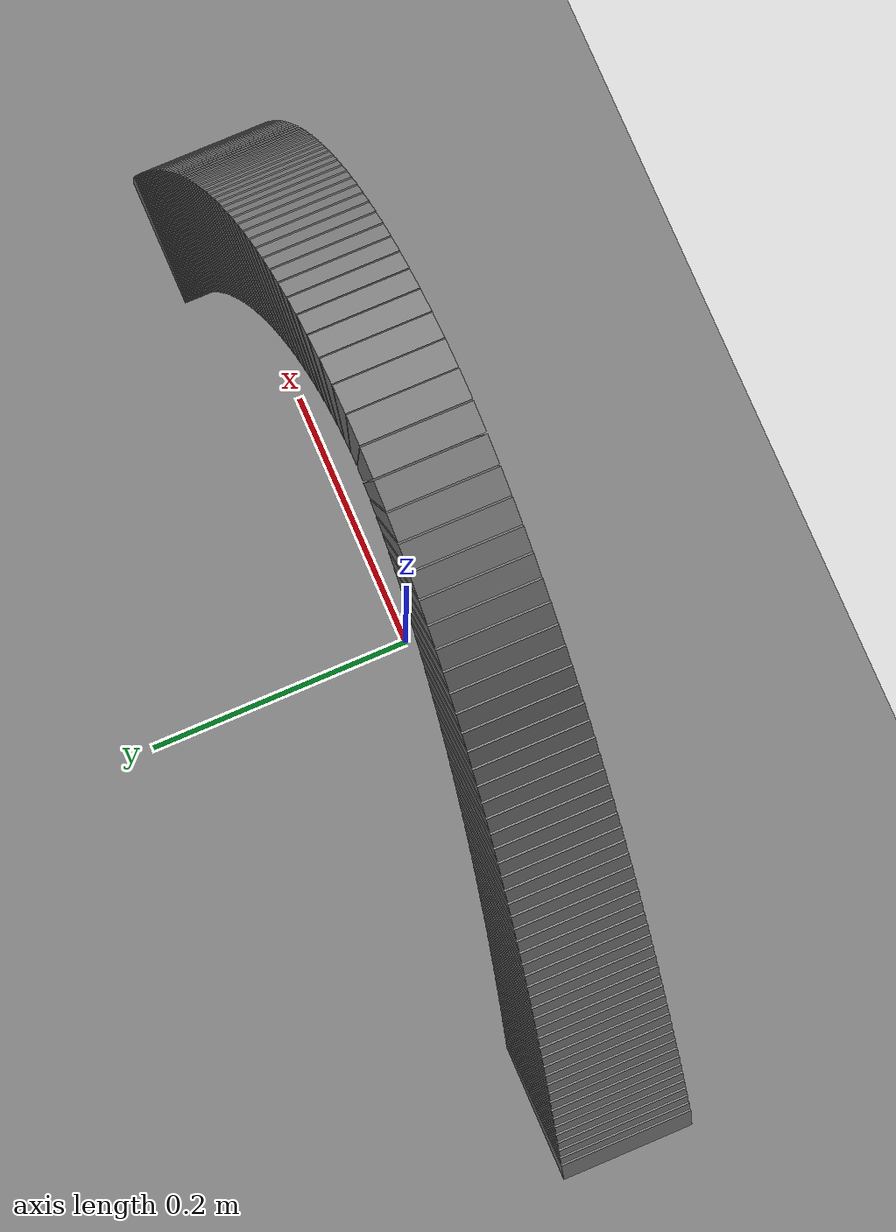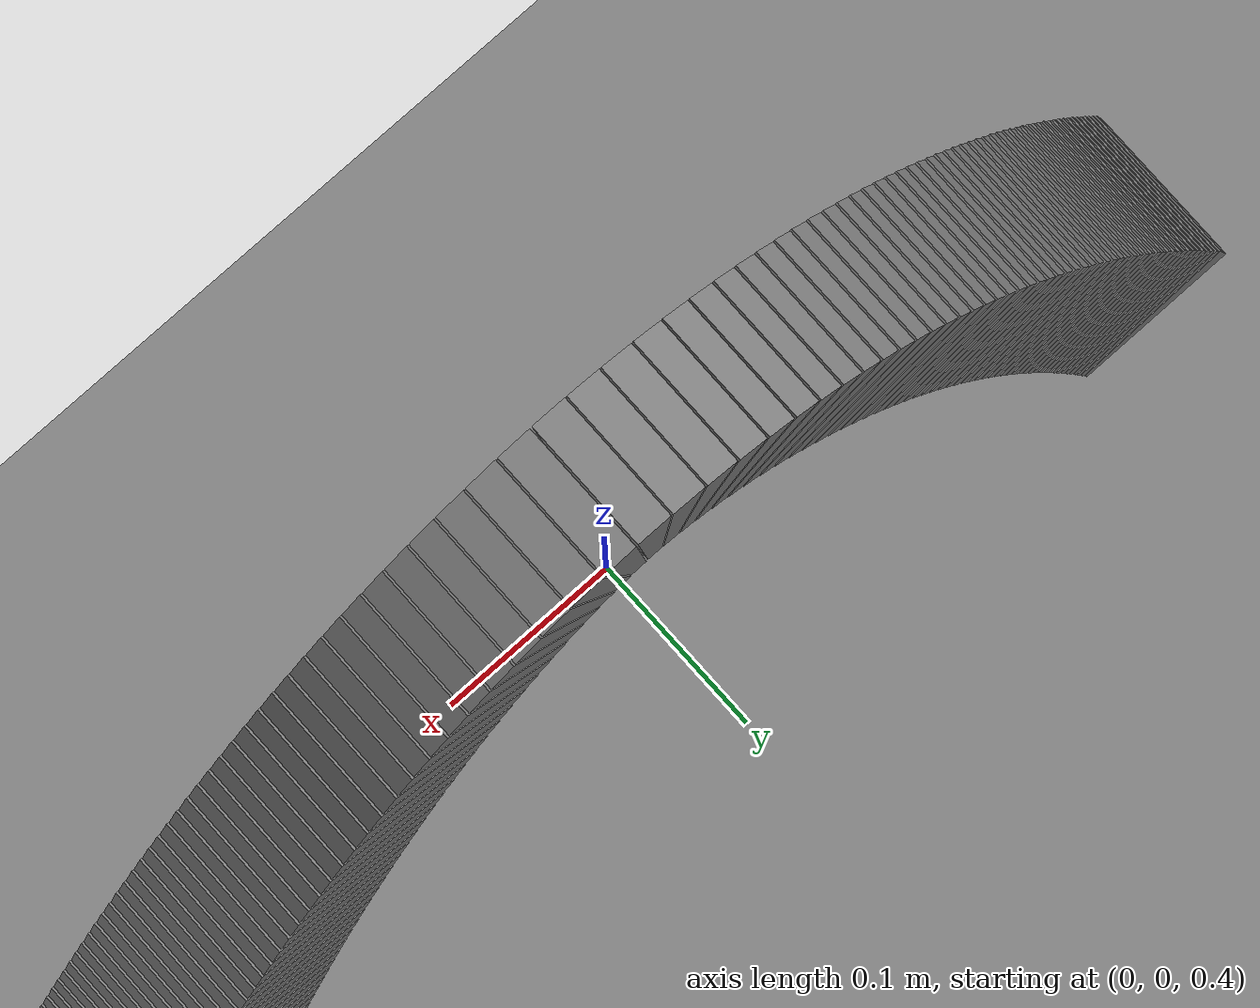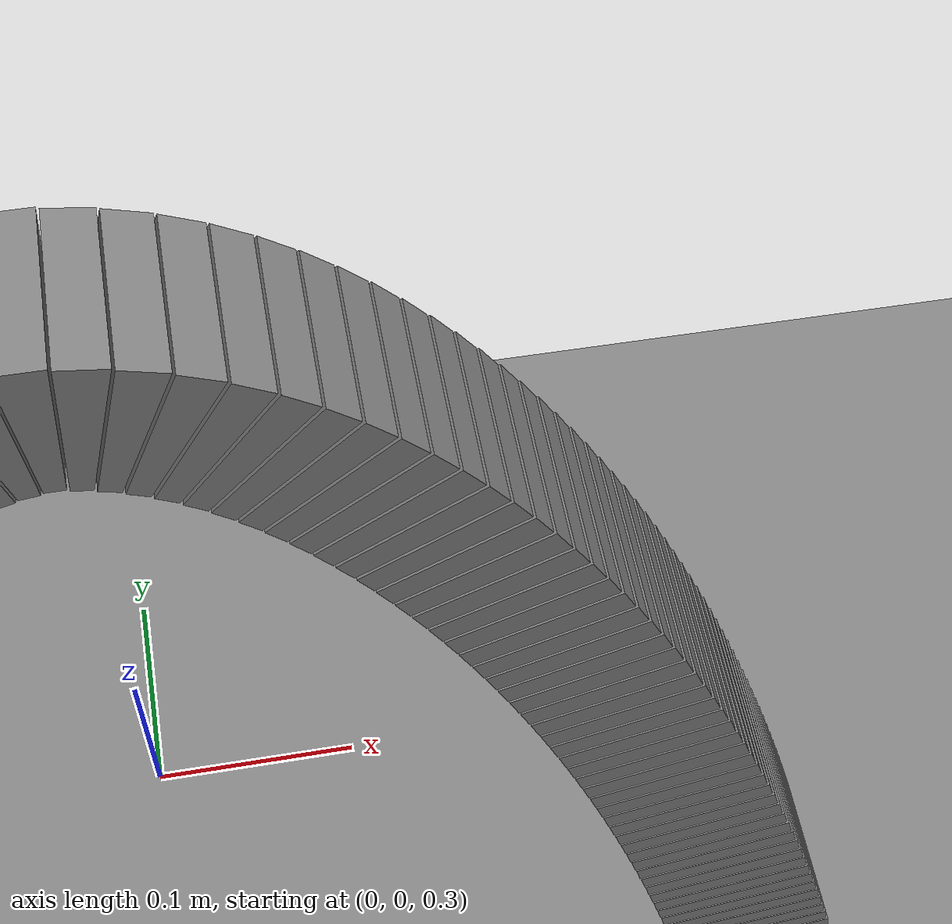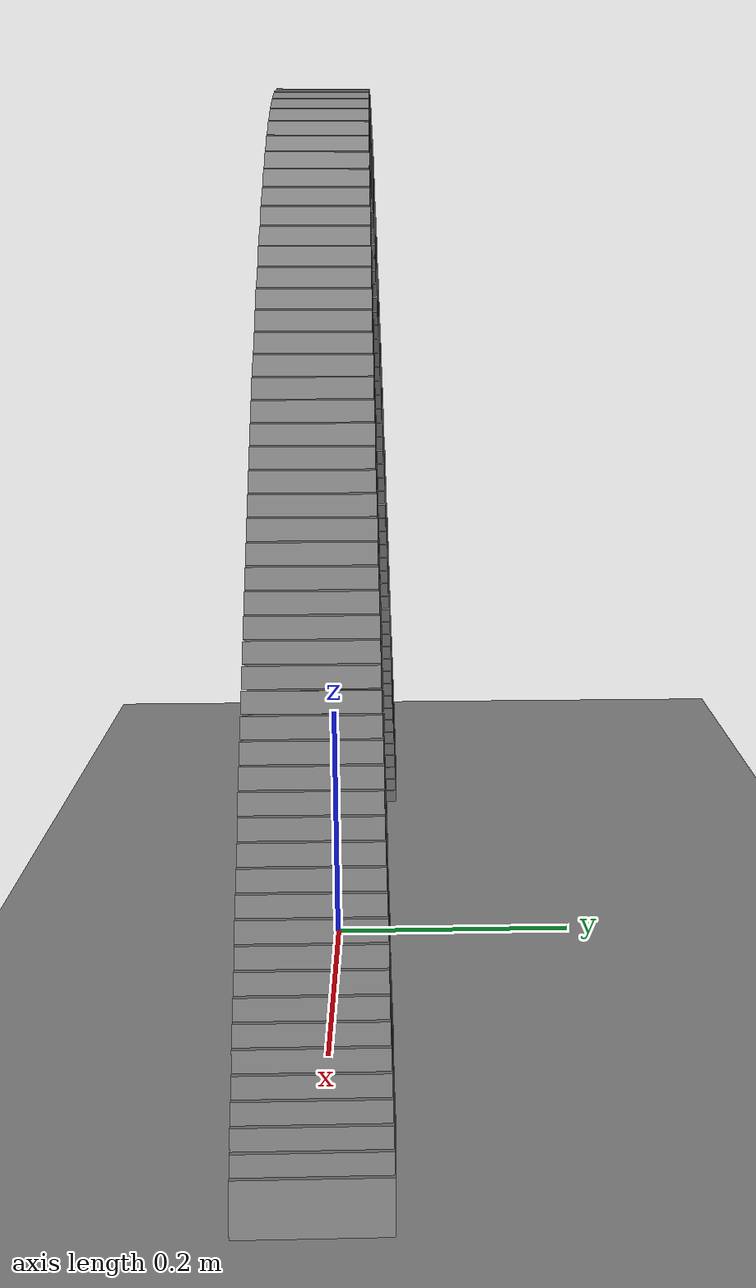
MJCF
<mujoco>
    <option timestep="0.005" gravity="0 0 -9.8" cone="elliptic"/>
    <asset>
        <mesh file="arch/num_stones=101/stone-01.obj" name="arch/num_stones=101/stone-01" scale="0.01000000 0.01000000 0.01000000"/>
        <mesh file="arch/num_stones=101/stone-02.obj" name="arch/num_stones=101/stone-02" scale="0.01000000 0.01000000 0.01000000"/>
        <mesh file="arch/num_stones=101/stone-03.obj" name="arch/num_stones=101/stone-03" scale="0.01000000 0.01000000 0.01000000"/>
        <mesh file="arch/num_stones=101/stone-04.obj" name="arch/num_stones=101/stone-04" scale="0.01000000 0.01000000 0.01000000"/>
        <mesh file="arch/num_stones=101/stone-05.obj" name="arch/num_stones=101/stone-05" scale="0.01000000 0.01000000 0.01000000"/>
        <mesh file="arch/num_stones=101/stone-06.obj" name="arch/num_stones=101/stone-06" scale="0.01000000 0.01000000 0.01000000"/>
        <mesh file="arch/num_stones=101/stone-07.obj" name="arch/num_stones=101/stone-07" scale="0.01000000 0.01000000 0.01000000"/>
        <mesh file="arch/num_stones=101/stone-08.obj" name="arch/num_stones=101/stone-08" scale="0.01000000 0.01000000 0.01000000"/>
        <mesh file="arch/num_stones=101/stone-09.obj" name="arch/num_stones=101/stone-09" scale="0.01000000 0.01000000 0.01000000"/>
        <mesh file="arch/num_stones=101/stone-10.obj" name="arch/num_stones=101/stone-10" scale="0.01000000 0.01000000 0.01000000"/>
        <mesh file="arch/num_stones=101/stone-11.obj" name="arch/num_stones=101/stone-11" scale="0.01000000 0.01000000 0.01000000"/>
        <mesh file="arch/num_stones=101/stone-12.obj" name="arch/num_stones=101/stone-12" scale="0.01000000 0.01000000 0.01000000"/>
        <mesh file="arch/num_stones=101/stone-13.obj" name="arch/num_stones=101/stone-13" scale="0.01000000 0.01000000 0.01000000"/>
        <mesh file="arch/num_stones=101/stone-14.obj" name="arch/num_stones=101/stone-14" scale="0.01000000 0.01000000 0.01000000"/>
        <mesh file="arch/num_stones=101/stone-15.obj" name="arch/num_stones=101/stone-15" scale="0.01000000 0.01000000 0.01000000"/>
        <mesh file="arch/num_stones=101/stone-16.obj" name="arch/num_stones=101/stone-16" scale="0.01000000 0.01000000 0.01000000"/>
        <mesh file="arch/num_stones=101/stone-17.obj" name="arch/num_stones=101/stone-17" scale="0.01000000 0.01000000 0.01000000"/>
        <mesh file="arch/num_stones=101/stone-18.obj" name="arch/num_stones=101/stone-18" scale="0.01000000 0.01000000 0.01000000"/>
        <mesh file="arch/num_stones=101/stone-19.obj" name="arch/num_stones=101/stone-19" scale="0.01000000 0.01000000 0.01000000"/>
        <mesh file="arch/num_stones=101/stone-20.obj" name="arch/num_stones=101/stone-20" scale="0.01000000 0.01000000 0.01000000"/>
        <mesh file="arch/num_stones=101/stone-21.obj" name="arch/num_stones=101/stone-21" scale="0.01000000 0.01000000 0.01000000"/>
        <mesh file="arch/num_stones=101/stone-22.obj" name="arch/num_stones=101/stone-22" scale="0.01000000 0.01000000 0.01000000"/>
        <mesh file="arch/num_stones=101/stone-23.obj" name="arch/num_stones=101/stone-23" scale="0.01000000 0.01000000 0.01000000"/>
        <mesh file="arch/num_stones=101/stone-24.obj" name="arch/num_stones=101/stone-24" scale="0.01000000 0.01000000 0.01000000"/>
        <mesh file="arch/num_stones=101/stone-25.obj" name="arch/num_stones=101/stone-25" scale="0.01000000 0.01000000 0.01000000"/>
        <mesh file="arch/num_stones=101/stone-26.obj" name="arch/num_stones=101/stone-26" scale="0.01000000 0.01000000 0.01000000"/>
        <mesh file="arch/num_stones=101/stone-27.obj" name="arch/num_stones=101/stone-27" scale="0.01000000 0.01000000 0.01000000"/>
        <mesh file="arch/num_stones=101/stone-28.obj" name="arch/num_stones=101/stone-28" scale="0.01000000 0.01000000 0.01000000"/>
        <mesh file="arch/num_stones=101/stone-29.obj" name="arch/num_stones=101/stone-29" scale="0.01000000 0.01000000 0.01000000"/>
        <mesh file="arch/num_stones=101/stone-30.obj" name="arch/num_stones=101/stone-30" scale="0.01000000 0.01000000 0.01000000"/>
        <mesh file="arch/num_stones=101/stone-31.obj" name="arch/num_stones=101/stone-31" scale="0.01000000 0.01000000 0.01000000"/>
        <mesh file="arch/num_stones=101/stone-32.obj" name="arch/num_stones=101/stone-32" scale="0.01000000 0.01000000 0.01000000"/>
        <mesh file="arch/num_stones=101/stone-33.obj" name="arch/num_stones=101/stone-33" scale="0.01000000 0.01000000 0.01000000"/>
        <mesh file="arch/num_stones=101/stone-34.obj" name="arch/num_stones=101/stone-34" scale="0.01000000 0.01000000 0.01000000"/>
        <mesh file="arch/num_stones=101/stone-35.obj" name="arch/num_stones=101/stone-35" scale="0.01000000 0.01000000 0.01000000"/>
        <mesh file="arch/num_stones=101/stone-36.obj" name="arch/num_stones=101/stone-36" scale="0.01000000 0.01000000 0.01000000"/>
        <mesh file="arch/num_stones=101/stone-37.obj" name="arch/num_stones=101/stone-37" scale="0.01000000 0.01000000 0.01000000"/>
        <mesh file="arch/num_stones=101/stone-38.obj" name="arch/num_stones=101/stone-38" scale="0.01000000 0.01000000 0.01000000"/>
        <mesh file="arch/num_stones=101/stone-39.obj" name="arch/num_stones=101/stone-39" scale="0.01000000 0.01000000 0.01000000"/>
        <mesh file="arch/num_stones=101/stone-40.obj" name="arch/num_stones=101/stone-40" scale="0.01000000 0.01000000 0.01000000"/>
        <mesh file="arch/num_stones=101/stone-41.obj" name="arch/num_stones=101/stone-41" scale="0.01000000 0.01000000 0.01000000"/>
        <mesh file="arch/num_stones=101/stone-42.obj" name="arch/num_stones=101/stone-42" scale="0.01000000 0.01000000 0.01000000"/>
        <mesh file="arch/num_stones=101/stone-43.obj" name="arch/num_stones=101/stone-43" scale="0.01000000 0.01000000 0.01000000"/>
        <mesh file="arch/num_stones=101/stone-44.obj" name="arch/num_stones=101/stone-44" scale="0.01000000 0.01000000 0.01000000"/>
        <mesh file="arch/num_stones=101/stone-45.obj" name="arch/num_stones=101/stone-45" scale="0.01000000 0.01000000 0.01000000"/>
        <mesh file="arch/num_stones=101/stone-46.obj" name="arch/num_stones=101/stone-46" scale="0.01000000 0.01000000 0.01000000"/>
        <mesh file="arch/num_stones=101/stone-47.obj" name="arch/num_stones=101/stone-47" scale="0.01000000 0.01000000 0.01000000"/>
        <mesh file="arch/num_stones=101/stone-48.obj" name="arch/num_stones=101/stone-48" scale="0.01000000 0.01000000 0.01000000"/>
        <mesh file="arch/num_stones=101/stone-49.obj" name="arch/num_stones=101/stone-49" scale="0.01000000 0.01000000 0.01000000"/>
        <mesh file="arch/num_stones=101/stone-50.obj" name="arch/num_stones=101/stone-50" scale="0.01000000 0.01000000 0.01000000"/>
        <mesh file="arch/num_stones=101/stone-51.obj" name="arch/num_stones=101/stone-51" scale="0.01000000 0.01000000 0.01000000"/>
        <mesh file="arch/num_stones=101/stone-52.obj" name="arch/num_stones=101/stone-52" scale="0.01000000 0.01000000 0.01000000"/>
        <mesh file="arch/num_stones=101/stone-53.obj" name="arch/num_stones=101/stone-53" scale="0.01000000 0.01000000 0.01000000"/>
        <mesh file="arch/num_stones=101/stone-54.obj" name="arch/num_stones=101/stone-54" scale="0.01000000 0.01000000 0.01000000"/>
        <mesh file="arch/num_stones=101/stone-55.obj" name="arch/num_stones=101/stone-55" scale="0.01000000 0.01000000 0.01000000"/>
        <mesh file="arch/num_stones=101/stone-56.obj" name="arch/num_stones=101/stone-56" scale="0.01000000 0.01000000 0.01000000"/>
        <mesh file="arch/num_stones=101/stone-57.obj" name="arch/num_stones=101/stone-57" scale="0.01000000 0.01000000 0.01000000"/>
        <mesh file="arch/num_stones=101/stone-58.obj" name="arch/num_stones=101/stone-58" scale="0.01000000 0.01000000 0.01000000"/>
        <mesh file="arch/num_stones=101/stone-59.obj" name="arch/num_stones=101/stone-59" scale="0.01000000 0.01000000 0.01000000"/>
        <mesh file="arch/num_stones=101/stone-60.obj" name="arch/num_stones=101/stone-60" scale="0.01000000 0.01000000 0.01000000"/>
        <mesh file="arch/num_stones=101/stone-61.obj" name="arch/num_stones=101/stone-61" scale="0.01000000 0.01000000 0.01000000"/>
        <mesh file="arch/num_stones=101/stone-62.obj" name="arch/num_stones=101/stone-62" scale="0.01000000 0.01000000 0.01000000"/>
        <mesh file="arch/num_stones=101/stone-63.obj" name="arch/num_stones=101/stone-63" scale="0.01000000 0.01000000 0.01000000"/>
        <mesh file="arch/num_stones=101/stone-64.obj" name="arch/num_stones=101/stone-64" scale="0.01000000 0.01000000 0.01000000"/>
        <mesh file="arch/num_stones=101/stone-65.obj" name="arch/num_stones=101/stone-65" scale="0.01000000 0.01000000 0.01000000"/>
        <mesh file="arch/num_stones=101/stone-66.obj" name="arch/num_stones=101/stone-66" scale="0.01000000 0.01000000 0.01000000"/>
        <mesh file="arch/num_stones=101/stone-67.obj" name="arch/num_stones=101/stone-67" scale="0.01000000 0.01000000 0.01000000"/>
        <mesh file="arch/num_stones=101/stone-68.obj" name="arch/num_stones=101/stone-68" scale="0.01000000 0.01000000 0.01000000"/>
        <mesh file="arch/num_stones=101/stone-69.obj" name="arch/num_stones=101/stone-69" scale="0.01000000 0.01000000 0.01000000"/>
        <mesh file="arch/num_stones=101/stone-70.obj" name="arch/num_stones=101/stone-70" scale="0.01000000 0.01000000 0.01000000"/>
        <mesh file="arch/num_stones=101/stone-71.obj" name="arch/num_stones=101/stone-71" scale="0.01000000 0.01000000 0.01000000"/>
        <mesh file="arch/num_stones=101/stone-72.obj" name="arch/num_stones=101/stone-72" scale="0.01000000 0.01000000 0.01000000"/>
        <mesh file="arch/num_stones=101/stone-73.obj" name="arch/num_stones=101/stone-73" scale="0.01000000 0.01000000 0.01000000"/>
        <mesh file="arch/num_stones=101/stone-74.obj" name="arch/num_stones=101/stone-74" scale="0.01000000 0.01000000 0.01000000"/>
        <mesh file="arch/num_stones=101/stone-75.obj" name="arch/num_stones=101/stone-75" scale="0.01000000 0.01000000 0.01000000"/>
        <mesh file="arch/num_stones=101/stone-76.obj" name="arch/num_stones=101/stone-76" scale="0.01000000 0.01000000 0.01000000"/>
        <mesh file="arch/num_stones=101/stone-77.obj" name="arch/num_stones=101/stone-77" scale="0.01000000 0.01000000 0.01000000"/>
        <mesh file="arch/num_stones=101/stone-78.obj" name="arch/num_stones=101/stone-78" scale="0.01000000 0.01000000 0.01000000"/>
        <mesh file="arch/num_stones=101/stone-79.obj" name="arch/num_stones=101/stone-79" scale="0.01000000 0.01000000 0.01000000"/>
        <mesh file="arch/num_stones=101/stone-80.obj" name="arch/num_stones=101/stone-80" scale="0.01000000 0.01000000 0.01000000"/>
        <mesh file="arch/num_stones=101/stone-81.obj" name="arch/num_stones=101/stone-81" scale="0.01000000 0.01000000 0.01000000"/>
        <mesh file="arch/num_stones=101/stone-82.obj" name="arch/num_stones=101/stone-82" scale="0.01000000 0.01000000 0.01000000"/>
        <mesh file="arch/num_stones=101/stone-83.obj" name="arch/num_stones=101/stone-83" scale="0.01000000 0.01000000 0.01000000"/>
        <mesh file="arch/num_stones=101/stone-84.obj" name="arch/num_stones=101/stone-84" scale="0.01000000 0.01000000 0.01000000"/>
        <mesh file="arch/num_stones=101/stone-85.obj" name="arch/num_stones=101/stone-85" scale="0.01000000 0.01000000 0.01000000"/>
        <mesh file="arch/num_stones=101/stone-86.obj" name="arch/num_stones=101/stone-86" scale="0.01000000 0.01000000 0.01000000"/>
        <mesh file="arch/num_stones=101/stone-87.obj" name="arch/num_stones=101/stone-87" scale="0.01000000 0.01000000 0.01000000"/>
        <mesh file="arch/num_stones=101/stone-88.obj" name="arch/num_stones=101/stone-88" scale="0.01000000 0.01000000 0.01000000"/>
        <mesh file="arch/num_stones=101/stone-89.obj" name="arch/num_stones=101/stone-89" scale="0.01000000 0.01000000 0.01000000"/>
        <mesh file="arch/num_stones=101/stone-90.obj" name="arch/num_stones=101/stone-90" scale="0.01000000 0.01000000 0.01000000"/>
        <mesh file="arch/num_stones=101/stone-91.obj" name="arch/num_stones=101/stone-91" scale="0.01000000 0.01000000 0.01000000"/>
        <mesh file="arch/num_stones=101/stone-92.obj" name="arch/num_stones=101/stone-92" scale="0.01000000 0.01000000 0.01000000"/>
        <mesh file="arch/num_stones=101/stone-93.obj" name="arch/num_stones=101/stone-93" scale="0.01000000 0.01000000 0.01000000"/>
        <mesh file="arch/num_stones=101/stone-94.obj" name="arch/num_stones=101/stone-94" scale="0.01000000 0.01000000 0.01000000"/>
        <mesh file="arch/num_stones=101/stone-95.obj" name="arch/num_stones=101/stone-95" scale="0.01000000 0.01000000 0.01000000"/>
        <mesh file="arch/num_stones=101/stone-96.obj" name="arch/num_stones=101/stone-96" scale="0.01000000 0.01000000 0.01000000"/>
        <mesh file="arch/num_stones=101/stone-97.obj" name="arch/num_stones=101/stone-97" scale="0.01000000 0.01000000 0.01000000"/>
        <mesh file="arch/num_stones=101/stone-98.obj" name="arch/num_stones=101/stone-98" scale="0.01000000 0.01000000 0.01000000"/>
        <mesh file="arch/num_stones=101/stone-99.obj" name="arch/num_stones=101/stone-99" scale="0.01000000 0.01000000 0.01000000"/>
        <mesh file="arch/num_stones=101/stone-100.obj" name="arch/num_stones=101/stone-100" scale="0.01000000 0.01000000 0.01000000"/>
        <mesh file="arch/num_stones=101/stone-101.obj" name="arch/num_stones=101/stone-101" scale="0.01000000 0.01000000 0.01000000"/>
    </asset>
    <worldbody>
        <body name="rigid_ipc_arch_plane" pos="0 0 0">
            <geom type="plane" size="10 10 1" friction="0.500000"/>
        </body>
        <body name="rigid_ipc_arch_stone_001" pos="0 0 0" quat="0 0 0.707107 0.707107">
            <geom mesh="arch/num_stones=101/stone-01" type="mesh" friction="0.500000"/>
            <freejoint/>
        </body>
        <body name="rigid_ipc_arch_stone_002" pos="0 0 0" quat="0 0 0.707107 0.707107">
            <geom mesh="arch/num_stones=101/stone-02" type="mesh" friction="0.500000"/>
            <freejoint/>
        </body>
        <body name="rigid_ipc_arch_stone_003" pos="0 0 0" quat="0 0 0.707107 0.707107">
            <geom mesh="arch/num_stones=101/stone-03" type="mesh" friction="0.500000"/>
            <freejoint/>
        </body>
        <body name="rigid_ipc_arch_stone_004" pos="0 0 0" quat="0 0 0.707107 0.707107">
            <geom mesh="arch/num_stones=101/stone-04" type="mesh" friction="0.500000"/>
            <freejoint/>
        </body>
        <body name="rigid_ipc_arch_stone_005" pos="0 0 0" quat="0 0 0.707107 0.707107">
            <geom mesh="arch/num_stones=101/stone-05" type="mesh" friction="0.500000"/>
            <freejoint/>
        </body>
        <body name="rigid_ipc_arch_stone_006" pos="0 0 0" quat="0 0 0.707107 0.707107">
            <geom mesh="arch/num_stones=101/stone-06" type="mesh" friction="0.500000"/>
            <freejoint/>
        </body>
        <body name="rigid_ipc_arch_stone_007" pos="0 0 0" quat="0 0 0.707107 0.707107">
            <geom mesh="arch/num_stones=101/stone-07" type="mesh" friction="0.500000"/>
            <freejoint/>
        </body>
        <body name="rigid_ipc_arch_stone_008" pos="0 0 0" quat="0 0 0.707107 0.707107">
            <geom mesh="arch/num_stones=101/stone-08" type="mesh" friction="0.500000"/>
            <freejoint/>
        </body>
        <body name="rigid_ipc_arch_stone_009" pos="0 0 0" quat="0 0 0.707107 0.707107">
            <geom mesh="arch/num_stones=101/stone-09" type="mesh" friction="0.500000"/>
            <freejoint/>
        </body>
        <body name="rigid_ipc_arch_stone_010" pos="0 0 0" quat="0 0 0.707107 0.707107">
            <geom mesh="arch/num_stones=101/stone-10" type="mesh" friction="0.500000"/>
            <freejoint/>
        </body>
        <body name="rigid_ipc_arch_stone_011" pos="0 0 0" quat="0 0 0.707107 0.707107">
            <geom mesh="arch/num_stones=101/stone-11" type="mesh" friction="0.500000"/>
            <freejoint/>
        </body>
        <body name="rigid_ipc_arch_stone_012" pos="0 0 0" quat="0 0 0.707107 0.707107">
            <geom mesh="arch/num_stones=101/stone-12" type="mesh" friction="0.500000"/>
            <freejoint/>
        </body>
        <body name="rigid_ipc_arch_stone_013" pos="0 0 0" quat="0 0 0.707107 0.707107">
            <geom mesh="arch/num_stones=101/stone-13" type="mesh" friction="0.500000"/>
            <freejoint/>
        </body>
        <body name="rigid_ipc_arch_stone_014" pos="0 0 0" quat="0 0 0.707107 0.707107">
            <geom mesh="arch/num_stones=101/stone-14" type="mesh" friction="0.500000"/>
            <freejoint/>
        </body>
        <body name="rigid_ipc_arch_stone_015" pos="0 0 0" quat="0 0 0.707107 0.707107">
            <geom mesh="arch/num_stones=101/stone-15" type="mesh" friction="0.500000"/>
            <freejoint/>
        </body>
        <body name="rigid_ipc_arch_stone_016" pos="0 0 0" quat="0 0 0.707107 0.707107">
            <geom mesh="arch/num_stones=101/stone-16" type="mesh" friction="0.500000"/>
            <freejoint/>
        </body>
        <body name="rigid_ipc_arch_stone_017" pos="0 0 0" quat="0 0 0.707107 0.707107">
            <geom mesh="arch/num_stones=101/stone-17" type="mesh" friction="0.500000"/>
            <freejoint/>
        </body>
        <body name="rigid_ipc_arch_stone_018" pos="0 0 0" quat="0 0 0.707107 0.707107">
            <geom mesh="arch/num_stones=101/stone-18" type="mesh" friction="0.500000"/>
            <freejoint/>
        </body>
        <body name="rigid_ipc_arch_stone_019" pos="0 0 0" quat="0 0 0.707107 0.707107">
            <geom mesh="arch/num_stones=101/stone-19" type="mesh" friction="0.500000"/>
            <freejoint/>
        </body>
        <body name="rigid_ipc_arch_stone_020" pos="0 0 0" quat="0 0 0.707107 0.707107">
            <geom mesh="arch/num_stones=101/stone-20" type="mesh" friction="0.500000"/>
            <freejoint/>
        </body>
        <body name="rigid_ipc_arch_stone_021" pos="0 0 0" quat="0 0 0.707107 0.707107">
            <geom mesh="arch/num_stones=101/stone-21" type="mesh" friction="0.500000"/>
            <freejoint/>
        </body>
        <body name="rigid_ipc_arch_stone_022" pos="0 0 0" quat="0 0 0.707107 0.707107">
            <geom mesh="arch/num_stones=101/stone-22" type="mesh" friction="0.500000"/>
            <freejoint/>
        </body>
        <body name="rigid_ipc_arch_stone_023" pos="0 0 0" quat="0 0 0.707107 0.707107">
            <geom mesh="arch/num_stones=101/stone-23" type="mesh" friction="0.500000"/>
            <freejoint/>
        </body>
        <body name="rigid_ipc_arch_stone_024" pos="0 0 0" quat="0 0 0.707107 0.707107">
            <geom mesh="arch/num_stones=101/stone-24" type="mesh" friction="0.500000"/>
            <freejoint/>
        </body>
        <body name="rigid_ipc_arch_stone_025" pos="0 0 0" quat="0 0 0.707107 0.707107">
            <geom mesh="arch/num_stones=101/stone-25" type="mesh" friction="0.500000"/>
            <freejoint/>
        </body>
        <body name="rigid_ipc_arch_stone_026" pos="0 0 0" quat="0 0 0.707107 0.707107">
            <geom mesh="arch/num_stones=101/stone-26" type="mesh" friction="0.500000"/>
            <freejoint/>
        </body>
        <body name="rigid_ipc_arch_stone_027" pos="0 0 0" quat="0 0 0.707107 0.707107">
            <geom mesh="arch/num_stones=101/stone-27" type="mesh" friction="0.500000"/>
            <freejoint/>
        </body>
        <body name="rigid_ipc_arch_stone_028" pos="0 0 0" quat="0 0 0.707107 0.707107">
            <geom mesh="arch/num_stones=101/stone-28" type="mesh" friction="0.500000"/>
            <freejoint/>
        </body>
        <body name="rigid_ipc_arch_stone_029" pos="0 0 0" quat="0 0 0.707107 0.707107">
            <geom mesh="arch/num_stones=101/stone-29" type="mesh" friction="0.500000"/>
            <freejoint/>
        </body>
        <body name="rigid_ipc_arch_stone_030" pos="0 0 0" quat="0 0 0.707107 0.707107">
            <geom mesh="arch/num_stones=101/stone-30" type="mesh" friction="0.500000"/>
            <freejoint/>
        </body>
        <body name="rigid_ipc_arch_stone_031" pos="0 0 0" quat="0 0 0.707107 0.707107">
            <geom mesh="arch/num_stones=101/stone-31" type="mesh" friction="0.500000"/>
            <freejoint/>
        </body>
        <body name="rigid_ipc_arch_stone_032" pos="0 0 0" quat="0 0 0.707107 0.707107">
            <geom mesh="arch/num_stones=101/stone-32" type="mesh" friction="0.500000"/>
            <freejoint/>
        </body>
        <body name="rigid_ipc_arch_stone_033" pos="0 0 0" quat="0 0 0.707107 0.707107">
            <geom mesh="arch/num_stones=101/stone-33" type="mesh" friction="0.500000"/>
            <freejoint/>
        </body>
        <body name="rigid_ipc_arch_stone_034" pos="0 0 0" quat="0 0 0.707107 0.707107">
            <geom mesh="arch/num_stones=101/stone-34" type="mesh" friction="0.500000"/>
            <freejoint/>
        </body>
        <body name="rigid_ipc_arch_stone_035" pos="0 0 0" quat="0 0 0.707107 0.707107">
            <geom mesh="arch/num_stones=101/stone-35" type="mesh" friction="0.500000"/>
            <freejoint/>
        </body>
        <body name="rigid_ipc_arch_stone_036" pos="0 0 0" quat="0 0 0.707107 0.707107">
            <geom mesh="arch/num_stones=101/stone-36" type="mesh" friction="0.500000"/>
            <freejoint/>
        </body>
        <body name="rigid_ipc_arch_stone_037" pos="0 0 0" quat="0 0 0.707107 0.707107">
            <geom mesh="arch/num_stones=101/stone-37" type="mesh" friction="0.500000"/>
            <freejoint/>
        </body>
        <body name="rigid_ipc_arch_stone_038" pos="0 0 0" quat="0 0 0.707107 0.707107">
            <geom mesh="arch/num_stones=101/stone-38" type="mesh" friction="0.500000"/>
            <freejoint/>
        </body>
        <body name="rigid_ipc_arch_stone_039" pos="0 0 0" quat="0 0 0.707107 0.707107">
            <geom mesh="arch/num_stones=101/stone-39" type="mesh" friction="0.500000"/>
            <freejoint/>
        </body>
        <body name="rigid_ipc_arch_stone_040" pos="0 0 0" quat="0 0 0.707107 0.707107">
            <geom mesh="arch/num_stones=101/stone-40" type="mesh" friction="0.500000"/>
            <freejoint/>
        </body>
        <body name="rigid_ipc_arch_stone_041" pos="0 0 0" quat="0 0 0.707107 0.707107">
            <geom mesh="arch/num_stones=101/stone-41" type="mesh" friction="0.500000"/>
            <freejoint/>
        </body>
        <body name="rigid_ipc_arch_stone_042" pos="0 0 0" quat="0 0 0.707107 0.707107">
            <geom mesh="arch/num_stones=101/stone-42" type="mesh" friction="0.500000"/>
            <freejoint/>
        </body>
        <body name="rigid_ipc_arch_stone_043" pos="0 0 0" quat="0 0 0.707107 0.707107">
            <geom mesh="arch/num_stones=101/stone-43" type="mesh" friction="0.500000"/>
            <freejoint/>
        </body>
        <body name="rigid_ipc_arch_stone_044" pos="0 0 0" quat="0 0 0.707107 0.707107">
            <geom mesh="arch/num_stones=101/stone-44" type="mesh" friction="0.500000"/>
            <freejoint/>
        </body>
        <body name="rigid_ipc_arch_stone_045" pos="0 0 0" quat="0 0 0.707107 0.707107">
            <geom mesh="arch/num_stones=101/stone-45" type="mesh" friction="0.500000"/>
            <freejoint/>
        </body>
        <body name="rigid_ipc_arch_stone_046" pos="0 0 0" quat="0 0 0.707107 0.707107">
            <geom mesh="arch/num_stones=101/stone-46" type="mesh" friction="0.500000"/>
            <freejoint/>
        </body>
        <body name="rigid_ipc_arch_stone_047" pos="0 0 0" quat="0 0 0.707107 0.707107">
            <geom mesh="arch/num_stones=101/stone-47" type="mesh" friction="0.500000"/>
            <freejoint/>
        </body>
        <body name="rigid_ipc_arch_stone_048" pos="0 0 0" quat="0 0 0.707107 0.707107">
            <geom mesh="arch/num_stones=101/stone-48" type="mesh" friction="0.500000"/>
            <freejoint/>
        </body>
        <body name="rigid_ipc_arch_stone_049" pos="0 0 0" quat="0 0 0.707107 0.707107">
            <geom mesh="arch/num_stones=101/stone-49" type="mesh" friction="0.500000"/>
            <freejoint/>
        </body>
        <body name="rigid_ipc_arch_stone_050" pos="0 0 0" quat="0 0 0.707107 0.707107">
            <geom mesh="arch/num_stones=101/stone-50" type="mesh" friction="0.500000"/>
            <freejoint/>
        </body>
        <body name="rigid_ipc_arch_stone_051" pos="0 0 0" quat="0 0 0.707107 0.707107">
            <geom mesh="arch/num_stones=101/stone-51" type="mesh" friction="0.500000"/>
            <freejoint/>
        </body>
        <body name="rigid_ipc_arch_stone_052" pos="0 0 0" quat="0 0 0.707107 0.707107">
            <geom mesh="arch/num_stones=101/stone-52" type="mesh" friction="0.500000"/>
            <freejoint/>
        </body>
        <body name="rigid_ipc_arch_stone_053" pos="0 0 0" quat="0 0 0.707107 0.707107">
            <geom mesh="arch/num_stones=101/stone-53" type="mesh" friction="0.500000"/>
            <freejoint/>
        </body>
        <body name="rigid_ipc_arch_stone_054" pos="0 0 0" quat="0 0 0.707107 0.707107">
            <geom mesh="arch/num_stones=101/stone-54" type="mesh" friction="0.500000"/>
            <freejoint/>
        </body>
        <body name="rigid_ipc_arch_stone_055" pos="0 0 0" quat="0 0 0.707107 0.707107">
            <geom mesh="arch/num_stones=101/stone-55" type="mesh" friction="0.500000"/>
            <freejoint/>
        </body>
        <body name="rigid_ipc_arch_stone_056" pos="0 0 0" quat="0 0 0.707107 0.707107">
            <geom mesh="arch/num_stones=101/stone-56" type="mesh" friction="0.500000"/>
            <freejoint/>
        </body>
        <body name="rigid_ipc_arch_stone_057" pos="0 0 0" quat="0 0 0.707107 0.707107">
            <geom mesh="arch/num_stones=101/stone-57" type="mesh" friction="0.500000"/>
            <freejoint/>
        </body>
        <body name="rigid_ipc_arch_stone_058" pos="0 0 0" quat="0 0 0.707107 0.707107">
            <geom mesh="arch/num_stones=101/stone-58" type="mesh" friction="0.500000"/>
            <freejoint/>
        </body>
        <body name="rigid_ipc_arch_stone_059" pos="0 0 0" quat="0 0 0.707107 0.707107">
            <geom mesh="arch/num_stones=101/stone-59" type="mesh" friction="0.500000"/>
            <freejoint/>
        </body>
        <body name="rigid_ipc_arch_stone_060" pos="0 0 0" quat="0 0 0.707107 0.707107">
            <geom mesh="arch/num_stones=101/stone-60" type="mesh" friction="0.500000"/>
            <freejoint/>
        </body>
        <body name="rigid_ipc_arch_stone_061" pos="0 0 0" quat="0 0 0.707107 0.707107">
            <geom mesh="arch/num_stones=101/stone-61" type="mesh" friction="0.500000"/>
            <freejoint/>
        </body>
        <body name="rigid_ipc_arch_stone_062" pos="0 0 0" quat="0 0 0.707107 0.707107">
            <geom mesh="arch/num_stones=101/stone-62" type="mesh" friction="0.500000"/>
            <freejoint/>
        </body>
        <body name="rigid_ipc_arch_stone_063" pos="0 0 0" quat="0 0 0.707107 0.707107">
            <geom mesh="arch/num_stones=101/stone-63" type="mesh" friction="0.500000"/>
            <freejoint/>
        </body>
        <body name="rigid_ipc_arch_stone_064" pos="0 0 0" quat="0 0 0.707107 0.707107">
            <geom mesh="arch/num_stones=101/stone-64" type="mesh" friction="0.500000"/>
            <freejoint/>
        </body>
        <body name="rigid_ipc_arch_stone_065" pos="0 0 0" quat="0 0 0.707107 0.707107">
            <geom mesh="arch/num_stones=101/stone-65" type="mesh" friction="0.500000"/>
            <freejoint/>
        </body>
        <body name="rigid_ipc_arch_stone_066" pos="0 0 0" quat="0 0 0.707107 0.707107">
            <geom mesh="arch/num_stones=101/stone-66" type="mesh" friction="0.500000"/>
            <freejoint/>
        </body>
        <body name="rigid_ipc_arch_stone_067" pos="0 0 0" quat="0 0 0.707107 0.707107">
            <geom mesh="arch/num_stones=101/stone-67" type="mesh" friction="0.500000"/>
            <freejoint/>
        </body>
        <body name="rigid_ipc_arch_stone_068" pos="0 0 0" quat="0 0 0.707107 0.707107">
            <geom mesh="arch/num_stones=101/stone-68" type="mesh" friction="0.500000"/>
            <freejoint/>
        </body>
        <body name="rigid_ipc_arch_stone_069" pos="0 0 0" quat="0 0 0.707107 0.707107">
            <geom mesh="arch/num_stones=101/stone-69" type="mesh" friction="0.500000"/>
            <freejoint/>
        </body>
        <body name="rigid_ipc_arch_stone_070" pos="0 0 0" quat="0 0 0.707107 0.707107">
            <geom mesh="arch/num_stones=101/stone-70" type="mesh" friction="0.500000"/>
            <freejoint/>
        </body>
        <body name="rigid_ipc_arch_stone_071" pos="0 0 0" quat="0 0 0.707107 0.707107">
            <geom mesh="arch/num_stones=101/stone-71" type="mesh" friction="0.500000"/>
            <freejoint/>
        </body>
        <body name="rigid_ipc_arch_stone_072" pos="0 0 0" quat="0 0 0.707107 0.707107">
            <geom mesh="arch/num_stones=101/stone-72" type="mesh" friction="0.500000"/>
            <freejoint/>
        </body>
        <body name="rigid_ipc_arch_stone_073" pos="0 0 0" quat="0 0 0.707107 0.707107">
            <geom mesh="arch/num_stones=101/stone-73" type="mesh" friction="0.500000"/>
            <freejoint/>
        </body>
        <body name="rigid_ipc_arch_stone_074" pos="0 0 0" quat="0 0 0.707107 0.707107">
            <geom mesh="arch/num_stones=101/stone-74" type="mesh" friction="0.500000"/>
            <freejoint/>
        </body>
        <body name="rigid_ipc_arch_stone_075" pos="0 0 0" quat="0 0 0.707107 0.707107">
            <geom mesh="arch/num_stones=101/stone-75" type="mesh" friction="0.500000"/>
            <freejoint/>
        </body>
        <body name="rigid_ipc_arch_stone_076" pos="0 0 0" quat="0 0 0.707107 0.707107">
            <geom mesh="arch/num_stones=101/stone-76" type="mesh" friction="0.500000"/>
            <freejoint/>
        </body>
        <body name="rigid_ipc_arch_stone_077" pos="0 0 0" quat="0 0 0.707107 0.707107">
            <geom mesh="arch/num_stones=101/stone-77" type="mesh" friction="0.500000"/>
            <freejoint/>
        </body>
        <body name="rigid_ipc_arch_stone_078" pos="0 0 0" quat="0 0 0.707107 0.707107">
            <geom mesh="arch/num_stones=101/stone-78" type="mesh" friction="0.500000"/>
            <freejoint/>
        </body>
        <body name="rigid_ipc_arch_stone_079" pos="0 0 0" quat="0 0 0.707107 0.707107">
            <geom mesh="arch/num_stones=101/stone-79" type="mesh" friction="0.500000"/>
            <freejoint/>
        </body>
        <body name="rigid_ipc_arch_stone_080" pos="0 0 0" quat="0 0 0.707107 0.707107">
            <geom mesh="arch/num_stones=101/stone-80" type="mesh" friction="0.500000"/>
            <freejoint/>
        </body>
        <body name="rigid_ipc_arch_stone_081" pos="0 0 0" quat="0 0 0.707107 0.707107">
            <geom mesh="arch/num_stones=101/stone-81" type="mesh" friction="0.500000"/>
            <freejoint/>
        </body>
        <body name="rigid_ipc_arch_stone_082" pos="0 0 0" quat="0 0 0.707107 0.707107">
            <geom mesh="arch/num_stones=101/stone-82" type="mesh" friction="0.500000"/>
            <freejoint/>
        </body>
        <body name="rigid_ipc_arch_stone_083" pos="0 0 0" quat="0 0 0.707107 0.707107">
            <geom mesh="arch/num_stones=101/stone-83" type="mesh" friction="0.500000"/>
            <freejoint/>
        </body>
        <body name="rigid_ipc_arch_stone_084" pos="0 0 0" quat="0 0 0.707107 0.707107">
            <geom mesh="arch/num_stones=101/stone-84" type="mesh" friction="0.500000"/>
            <freejoint/>
        </body>
        <body name="rigid_ipc_arch_stone_085" pos="0 0 0" quat="0 0 0.707107 0.707107">
            <geom mesh="arch/num_stones=101/stone-85" type="mesh" friction="0.500000"/>
            <freejoint/>
        </body>
        <body name="rigid_ipc_arch_stone_086" pos="0 0 0" quat="0 0 0.707107 0.707107">
            <geom mesh="arch/num_stones=101/stone-86" type="mesh" friction="0.500000"/>
            <freejoint/>
        </body>
        <body name="rigid_ipc_arch_stone_087" pos="0 0 0" quat="0 0 0.707107 0.707107">
            <geom mesh="arch/num_stones=101/stone-87" type="mesh" friction="0.500000"/>
            <freejoint/>
        </body>
        <body name="rigid_ipc_arch_stone_088" pos="0 0 0" quat="0 0 0.707107 0.707107">
            <geom mesh="arch/num_stones=101/stone-88" type="mesh" friction="0.500000"/>
            <freejoint/>
        </body>
        <body name="rigid_ipc_arch_stone_089" pos="0 0 0" quat="0 0 0.707107 0.707107">
            <geom mesh="arch/num_stones=101/stone-89" type="mesh" friction="0.500000"/>
            <freejoint/>
        </body>
        <body name="rigid_ipc_arch_stone_090" pos="0 0 0" quat="0 0 0.707107 0.707107">
            <geom mesh="arch/num_stones=101/stone-90" type="mesh" friction="0.500000"/>
            <freejoint/>
        </body>
        <body name="rigid_ipc_arch_stone_091" pos="0 0 0" quat="0 0 0.707107 0.707107">
            <geom mesh="arch/num_stones=101/stone-91" type="mesh" friction="0.500000"/>
            <freejoint/>
        </body>
        <body name="rigid_ipc_arch_stone_092" pos="0 0 0" quat="0 0 0.707107 0.707107">
            <geom mesh="arch/num_stones=101/stone-92" type="mesh" friction="0.500000"/>
            <freejoint/>
        </body>
        <body name="rigid_ipc_arch_stone_093" pos="0 0 0" quat="0 0 0.707107 0.707107">
            <geom mesh="arch/num_stones=101/stone-93" type="mesh" friction="0.500000"/>
            <freejoint/>
        </body>
        <body name="rigid_ipc_arch_stone_094" pos="0 0 0" quat="0 0 0.707107 0.707107">
            <geom mesh="arch/num_stones=101/stone-94" type="mesh" friction="0.500000"/>
            <freejoint/>
        </body>
        <body name="rigid_ipc_arch_stone_095" pos="0 0 0" quat="0 0 0.707107 0.707107">
            <geom mesh="arch/num_stones=101/stone-95" type="mesh" friction="0.500000"/>
            <freejoint/>
        </body>
        <body name="rigid_ipc_arch_stone_096" pos="0 0 0" quat="0 0 0.707107 0.707107">
            <geom mesh="arch/num_stones=101/stone-96" type="mesh" friction="0.500000"/>
            <freejoint/>
        </body>
        <body name="rigid_ipc_arch_stone_097" pos="0 0 0" quat="0 0 0.707107 0.707107">
            <geom mesh="arch/num_stones=101/stone-97" type="mesh" friction="0.500000"/>
            <freejoint/>
        </body>
        <body name="rigid_ipc_arch_stone_098" pos="0 0 0" quat="0 0 0.707107 0.707107">
            <geom mesh="arch/num_stones=101/stone-98" type="mesh" friction="0.500000"/>
            <freejoint/>
        </body>
        <body name="rigid_ipc_arch_stone_099" pos="0 0 0" quat="0 0 0.707107 0.707107">
            <geom mesh="arch/num_stones=101/stone-99" type="mesh" friction="0.500000"/>
            <freejoint/>
        </body>
        <body name="rigid_ipc_arch_stone_100" pos="0 0 0" quat="0 0 0.707107 0.707107">
            <geom mesh="arch/num_stones=101/stone-100" type="mesh" friction="0.500000"/>
            <freejoint/>
        </body>
        <body name="rigid_ipc_arch_stone_101" pos="0 0 0" quat="0 0 0.707107 0.707107">
            <geom mesh="arch/num_stones=101/stone-101" type="mesh" friction="0.500000"/>
            <freejoint/>
        </body>
    </worldbody>
</mujoco>
